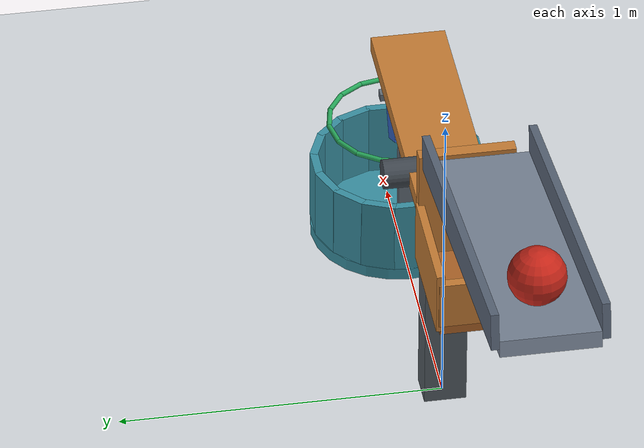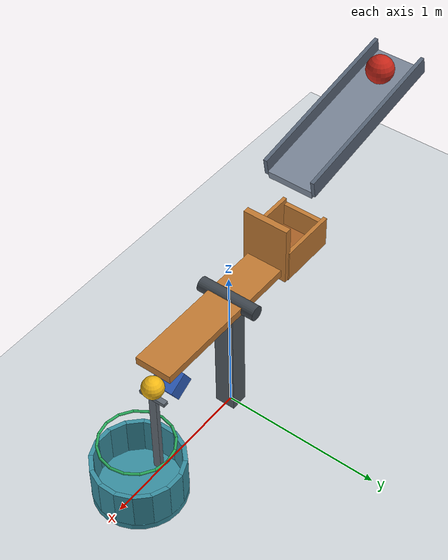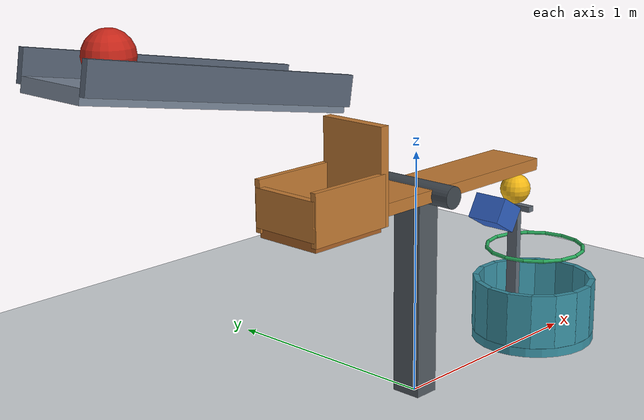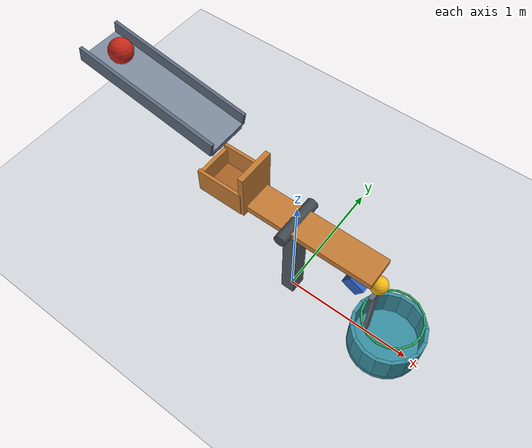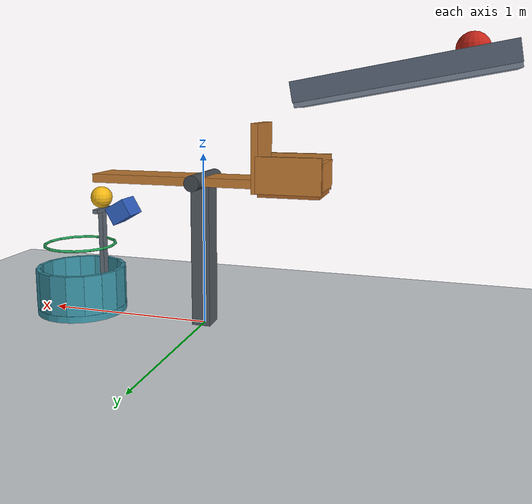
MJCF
<mujoco model="ramp_balance_hoop_cup">
  <compiler angle="degree" inertiafromgeom="true"/>
  <option timestep="0.002" gravity="0 0 -9.81" integrator="implicitfast" cone="elliptic" iterations="100"/>
  <size njmax="2000" nconmax="500"/>

  <visual>
    <headlight ambient="0.45 0.45 0.45" diffuse="0.7 0.7 0.7" specular="0.15 0.15 0.15"/>
  </visual>

  <worldbody>
    <light name="main_light" pos="-1 -2 4" dir="0.2 0.3 -1"/>
    <camera name="overview" pos="2.8 -4 2.7" xyaxes="0.8 0.6 0 -0.27 0.36 0.893"/>

    <geom name="floor" type="plane" size="4 3 0.1" contype="1" conaffinity="5" condim="6" friction="0.9 0.01 0.01" rgba="0.82 0.84 0.86 1"/>

    <!-- The starting contact point is 0.9 m along the ramp from its lower edge. -->
    <body name="ramp" pos="-1.095985 0 1.380886" quat="0.996194698 0 0.087155743 0">
      <geom name="ramp_surface" type="box" size="0.55 0.145 0.025" contype="2" conaffinity="4" condim="6" friction="0.8 0.005 0.0005" solref="0.008 1" rgba="0.48 0.53 0.60 1"/>
      <geom name="ramp_rail_left" type="box" pos="0 0.157 0.055" size="0.55 0.012 0.055" contype="2" conaffinity="4" friction="0.5 0.005 0.0005" rgba="0.35 0.40 0.47 1"/>
      <geom name="ramp_rail_right" type="box" pos="0 -0.157 0.055" size="0.55 0.012 0.055" contype="2" conaffinity="4" friction="0.5 0.005 0.0005" rgba="0.35 0.40 0.47 1"/>
    </body>

    <body name="fulcrum" pos="0 0 0.85">
      <geom name="fulcrum_bearing" type="cylinder" quat="0.707106781 0.707106781 0 0" size="0.045 0.19" contype="0" conaffinity="0" rgba="0.25 0.28 0.31 1"/>
      <geom name="fulcrum_post" type="box" pos="0 0 -0.435" size="0.055 0.065 0.415" contype="0" conaffinity="0" rgba="0.32 0.35 0.38 1"/>
    </body>

    <!-- Positive hinge angle lowers the striker end; the negative limit lowers the recessed end. -->
    <body name="balance" pos="0 0 0.85">
      <joint name="balance_hinge" type="hinge" axis="0 1 0" limited="true" range="-15 30" damping="0.04" frictionloss="0.015" armature="0.001" solreflimit="0.006 1"/>
      <geom name="balance_beam" type="box" pos="0.145 0 0" size="0.505 0.115 0.025" mass="0.50" contype="1" conaffinity="5" condim="6" friction="1.3 0.01 0.002" solref="0.008 1" rgba="0.76 0.48 0.20 1"/>
      <geom name="balance_recess_floor" type="box" pos="-0.53 0 -0.045" size="0.17 0.14 0.02" mass="0.08" contype="1" conaffinity="5" condim="6" friction="0.85 0.01 0.003" solref="0.008 1" rgba="0.66 0.38 0.15 1"/>
      <geom name="balance_recess_back" type="box" pos="-0.70 0 0.05" size="0.015 0.145 0.075" mass="0.03" contype="1" conaffinity="5" friction="0.8 0.01 0.002" solref="0.008 1" rgba="0.76 0.48 0.20 1"/>
      <geom name="balance_recess_inner" type="box" pos="-0.345 0 0.14" size="0.02 0.145 0.19" mass="0.04" contype="1" conaffinity="5" friction="0.8 0.01 0.002" solref="0.008 1" rgba="0.76 0.48 0.20 1"/>
      <geom name="balance_recess_side_left" type="box" pos="-0.53 0.14 0.055" size="0.18 0.012 0.10" mass="0.03" contype="1" conaffinity="5" friction="0.8 0.01 0.002" solref="0.008 1" rgba="0.76 0.48 0.20 1"/>
      <geom name="balance_recess_side_right" type="box" pos="-0.53 -0.14 0.055" size="0.18 0.012 0.10" mass="0.03" contype="1" conaffinity="5" friction="0.8 0.01 0.002" solref="0.008 1" rgba="0.76 0.48 0.20 1"/>
    </body>

    <body name="ball1" pos="-1.421567 0 1.549992">
      <freejoint name="ball1_free"/>
      <geom name="ball1_sphere" type="sphere" size="0.085" mass="3" contype="4" conaffinity="3" condim="6" friction="0.8 0.005 0.0005" solref="0.008 1" rgba="0.78 0.15 0.10 1"/>
    </body>

    <body name="block" pos="0.516314 0 0.644282" quat="0.965925826 0 0.258819045 0">
      <freejoint name="block_free"/>
      <geom name="block_striker" type="box" size="0.065 0.075 0.055" mass="0.22" contype="1" conaffinity="5" condim="6" friction="1.3 0.01 0.003" solref="0.008 1" rgba="0.18 0.37 0.75 1"/>
    </body>

    <body name="ball2" pos="0.66 0 0.72">
      <freejoint name="ball2_free"/>
      <geom name="ball2_sphere" type="sphere" size="0.065" mass="0.07" contype="1" conaffinity="5" condim="6" friction="0.9 0.01 0.02" solref="0.008 1" rgba="0.95 0.72 0.08 1"/>
    </body>

    <!-- A narrow stationary perch lets the striker knock ball2 clear. -->
    <body name="perch" pos="0.66 0 0">
      <geom name="perch_top" type="box" pos="0 0 0.643" size="0.016 0.085 0.012" contype="1" conaffinity="5" friction="0.5 0.005 0.001" solref="0.008 1" rgba="0.38 0.42 0.46 1"/>
      <geom name="perch_post" type="box" pos="0 0 0.3155" size="0.014 0.025 0.3155" contype="1" conaffinity="5" friction="0.5 0.005 0.001" rgba="0.38 0.42 0.46 1"/>
    </body>

    <body name="hoop" pos="0.82 0 0.42">
      <geom name="hoop_00" type="capsule" fromto="0.215 0 0 0.198634 0.082277 0" size="0.008" rgba="0.15 0.65 0.35 1"/>
      <geom name="hoop_01" type="capsule" fromto="0.198634 0.082277 0 0.152028 0.152028 0" size="0.008" rgba="0.15 0.65 0.35 1"/>
      <geom name="hoop_02" type="capsule" fromto="0.152028 0.152028 0 0.082277 0.198634 0" size="0.008" rgba="0.15 0.65 0.35 1"/>
      <geom name="hoop_03" type="capsule" fromto="0.082277 0.198634 0 0 0.215 0" size="0.008" rgba="0.15 0.65 0.35 1"/>
      <geom name="hoop_04" type="capsule" fromto="0 0.215 0 -0.082277 0.198634 0" size="0.008" rgba="0.15 0.65 0.35 1"/>
      <geom name="hoop_05" type="capsule" fromto="-0.082277 0.198634 0 -0.152028 0.152028 0" size="0.008" rgba="0.15 0.65 0.35 1"/>
      <geom name="hoop_06" type="capsule" fromto="-0.152028 0.152028 0 -0.198634 0.082277 0" size="0.008" rgba="0.15 0.65 0.35 1"/>
      <geom name="hoop_07" type="capsule" fromto="-0.198634 0.082277 0 -0.215 0 0" size="0.008" rgba="0.15 0.65 0.35 1"/>
      <geom name="hoop_08" type="capsule" fromto="-0.215 0 0 -0.198634 -0.082277 0" size="0.008" rgba="0.15 0.65 0.35 1"/>
      <geom name="hoop_09" type="capsule" fromto="-0.198634 -0.082277 0 -0.152028 -0.152028 0" size="0.008" rgba="0.15 0.65 0.35 1"/>
      <geom name="hoop_10" type="capsule" fromto="-0.152028 -0.152028 0 -0.082277 -0.198634 0" size="0.008" rgba="0.15 0.65 0.35 1"/>
      <geom name="hoop_11" type="capsule" fromto="-0.082277 -0.198634 0 0 -0.215 0" size="0.008" rgba="0.15 0.65 0.35 1"/>
      <geom name="hoop_12" type="capsule" fromto="0 -0.215 0 0.082277 -0.198634 0" size="0.008" rgba="0.15 0.65 0.35 1"/>
      <geom name="hoop_13" type="capsule" fromto="0.082277 -0.198634 0 0.152028 -0.152028 0" size="0.008" rgba="0.15 0.65 0.35 1"/>
      <geom name="hoop_14" type="capsule" fromto="0.152028 -0.152028 0 0.198634 -0.082277 0" size="0.008" rgba="0.15 0.65 0.35 1"/>
      <geom name="hoop_15" type="capsule" fromto="0.198634 -0.082277 0 0.215 0 0" size="0.008" rgba="0.15 0.65 0.35 1"/>
    </body>

    <body name="cup" pos="0.82 0 0">
      <geom name="cup_bottom" type="cylinder" pos="0 0 0.02" size="0.273 0.02" condim="6" friction="1 0.02 0.03" solref="0.01 1" rgba="0.22 0.56 0.63 1"/>
      <geom name="cup_wall_00" type="box" pos="0.255 0 0.16" euler="0 0 0" size="0.013 0.054 0.12" condim="6" friction="1 0.02 0.02" solref="0.01 1" rgba="0.22 0.56 0.63 1"/>
      <geom name="cup_wall_01" type="box" pos="0.235589 0.097584 0.16" euler="0 0 22.5" size="0.013 0.054 0.12" condim="6" friction="1 0.02 0.02" solref="0.01 1" rgba="0.22 0.56 0.63 1"/>
      <geom name="cup_wall_02" type="box" pos="0.180312 0.180312 0.16" euler="0 0 45" size="0.013 0.054 0.12" condim="6" friction="1 0.02 0.02" solref="0.01 1" rgba="0.22 0.56 0.63 1"/>
      <geom name="cup_wall_03" type="box" pos="0.097584 0.235589 0.16" euler="0 0 67.5" size="0.013 0.054 0.12" condim="6" friction="1 0.02 0.02" solref="0.01 1" rgba="0.22 0.56 0.63 1"/>
      <geom name="cup_wall_04" type="box" pos="0 0.255 0.16" euler="0 0 90" size="0.013 0.054 0.12" condim="6" friction="1 0.02 0.02" solref="0.01 1" rgba="0.22 0.56 0.63 1"/>
      <geom name="cup_wall_05" type="box" pos="-0.097584 0.235589 0.16" euler="0 0 112.5" size="0.013 0.054 0.12" condim="6" friction="1 0.02 0.02" solref="0.01 1" rgba="0.22 0.56 0.63 1"/>
      <geom name="cup_wall_06" type="box" pos="-0.180312 0.180312 0.16" euler="0 0 135" size="0.013 0.054 0.12" condim="6" friction="1 0.02 0.02" solref="0.01 1" rgba="0.22 0.56 0.63 1"/>
      <geom name="cup_wall_07" type="box" pos="-0.235589 0.097584 0.16" euler="0 0 157.5" size="0.013 0.054 0.12" condim="6" friction="1 0.02 0.02" solref="0.01 1" rgba="0.22 0.56 0.63 1"/>
      <geom name="cup_wall_08" type="box" pos="-0.255 0 0.16" euler="0 0 180" size="0.013 0.054 0.12" condim="6" friction="1 0.02 0.02" solref="0.01 1" rgba="0.22 0.56 0.63 1"/>
      <geom name="cup_wall_09" type="box" pos="-0.235589 -0.097584 0.16" euler="0 0 202.5" size="0.013 0.054 0.12" condim="6" friction="1 0.02 0.02" solref="0.01 1" rgba="0.22 0.56 0.63 1"/>
      <geom name="cup_wall_10" type="box" pos="-0.180312 -0.180312 0.16" euler="0 0 225" size="0.013 0.054 0.12" condim="6" friction="1 0.02 0.02" solref="0.01 1" rgba="0.22 0.56 0.63 1"/>
      <geom name="cup_wall_11" type="box" pos="-0.097584 -0.235589 0.16" euler="0 0 247.5" size="0.013 0.054 0.12" condim="6" friction="1 0.02 0.02" solref="0.01 1" rgba="0.22 0.56 0.63 1"/>
      <geom name="cup_wall_12" type="box" pos="0 -0.255 0.16" euler="0 0 270" size="0.013 0.054 0.12" condim="6" friction="1 0.02 0.02" solref="0.01 1" rgba="0.22 0.56 0.63 1"/>
      <geom name="cup_wall_13" type="box" pos="0.097584 -0.235589 0.16" euler="0 0 292.5" size="0.013 0.054 0.12" condim="6" friction="1 0.02 0.02" solref="0.01 1" rgba="0.22 0.56 0.63 1"/>
      <geom name="cup_wall_14" type="box" pos="0.180312 -0.180312 0.16" euler="0 0 315" size="0.013 0.054 0.12" condim="6" friction="1 0.02 0.02" solref="0.01 1" rgba="0.22 0.56 0.63 1"/>
      <geom name="cup_wall_15" type="box" pos="0.235589 -0.097584 0.16" euler="0 0 337.5" size="0.013 0.054 0.12" condim="6" friction="1 0.02 0.02" solref="0.01 1" rgba="0.22 0.56 0.63 1"/>
    </body>
  </worldbody>

  <keyframe>
    <key name="start" qpos="0.5235987756 -1.421567 0 1.549992 1 0 0 0 0.516314 0 0.644282 0.965925826 0 0.258819045 0 0.66 0 0.72 1 0 0 0"/>
  </keyframe>
</mujoco>
